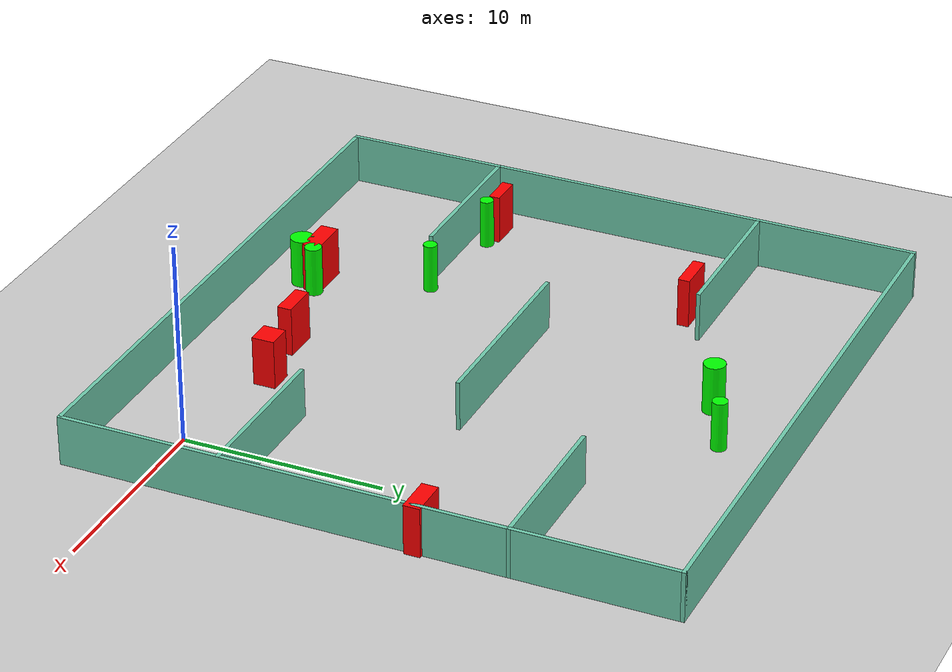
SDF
<sdf version="1.7">
 <world name="default">
  <light name="sun" type="directional">
   <pose>0 0 10 0 -0 0</pose>
   <diffuse>0.8 0.8 0.8 1</diffuse>
   <specular>0.2 0.2 0.2 1</specular>
   <attenuation>
    <range>1000</range>
    <constant>0.9</constant>
    <linear>0.01</linear>
    <quadratic>0.001</quadratic>
   </attenuation>
   <direction>-0.5 0.1 -0.9</direction>
   <spot><inner_angle>0</inner_angle><outer_angle>0</outer_angle><falloff>0</falloff></spot>
  </light>
  <model name="ground_plane">
   <static>1</static>
   <link name="link">
    <collision name="collision">
     <geometry><plane><normal>0 0 1</normal><size>100 100</size></plane></geometry>
     <surface>
      <contact><collide_bitmask>65535</collide_bitmask></contact>
      <friction><ode><mu>100</mu><mu2>50</mu2></ode></friction>
     </surface>
    </collision>
    <visual name="visual">
     <cast_shadows>0</cast_shadows>
     <geometry><plane><normal>0 0 1</normal><size>100 100</size></plane></geometry>
     <material>
      <script><uri>file://media/materials/scripts/gazebo.material</uri><name>Gazebo/Grey</name></script>
     </material>
    </visual>
   </link>
  </model>
  <gravity>0 0 -9.8</gravity>
  <magnetic_field>6e-06 2.3e-05 -4.2e-05</magnetic_field>
  <atmosphere type="adiabatic"/>
  <physics type="ode">
   <max_step_size>0.001</max_step_size>
   <real_time_factor>1</real_time_factor>
   <real_time_update_rate>1000</real_time_update_rate>
  </physics>
  <scene><ambient>0.4 0.4 0.4 1</ambient><background>0.7 0.7 0.7 1</background><shadows>1</shadows></scene>
  <spherical_coordinates>
   <surface_model>EARTH_WGS84</surface_model>
   <latitude_deg>0</latitude_deg>
   <longitude_deg>0</longitude_deg>
   <elevation>0</elevation>
   <heading_deg>0</heading_deg>
  </spherical_coordinates>
  <model name="my_base_walls">
   <link name="Wall_10">
    <collision name="Wall_10_Collision">
     <geometry><box><size>8.2 0.2 2.5</size></box></geometry>
     <pose>0 0 1.25 0 -0 0</pose>
    </collision>
    <visual name="Wall_10_Visual">
     <pose>0 0 1.25 0 -0 0</pose>
     <geometry><box><size>8.2 0.2 2.5</size></box></geometry>
     <material>
      <script><uri>file://media/materials/scripts/gazebo.material</uri><name>Gazebo/Grey</name></script>
      <ambient>0.435294 0.796078 0.67451 1</ambient>
     </material>
     <meta><layer>0</layer></meta>
    </visual>
    <pose>-11 -7 0 0 -0 0</pose>
   </link>
   <link name="Wall_12">
    <collision name="Wall_12_Collision">
     <geometry><box><size>8.2 0.2 2.5</size></box></geometry>
     <pose>0 0 1.25 0 -0 0</pose>
    </collision>
    <visual name="Wall_12_Visual">
     <pose>0 0 1.25 0 -0 0</pose>
     <geometry><box><size>8.2 0.2 2.5</size></box></geometry>
     <material>
      <script><uri>file://media/materials/scripts/gazebo.material</uri><name>Gazebo/Grey</name></script>
      <ambient>0.435294 0.796078 0.67451 1</ambient>
     </material>
     <meta><layer>0</layer></meta>
    </visual>
    <pose>-11 7 0 0 -0 0</pose>
   </link>
   <link name="Wall_14">
    <collision name="Wall_14_Collision">
     <geometry><box><size>8.2 0.2 2.5</size></box></geometry>
     <pose>0 0 1.25 0 -0 0</pose>
    </collision>
    <visual name="Wall_14_Visual">
     <pose>0 0 1.25 0 -0 0</pose>
     <geometry><box><size>8.2 0.2 2.5</size></box></geometry>
     <material>
      <script><uri>file://media/materials/scripts/gazebo.material</uri><name>Gazebo/Grey</name></script>
      <ambient>0.435294 0.796078 0.67451 1</ambient>
     </material>
     <meta><layer>0</layer></meta>
    </visual>
    <pose>11 7 0 0 -0 3.14159</pose>
   </link>
   <link name="Wall_16">
    <collision name="Wall_16_Collision">
     <geometry><box><size>10.2 0.2 2.5</size></box></geometry>
     <pose>0 0 1.25 0 -0 0</pose>
    </collision>
    <visual name="Wall_16_Visual">
     <pose>0 0 1.25 0 -0 0</pose>
     <geometry><box><size>10.2 0.2 2.5</size></box></geometry>
     <material>
      <script><uri>file://media/materials/scripts/gazebo.material</uri><name>Gazebo/Grey</name></script>
      <ambient>0.435294 0.796078 0.67451 1</ambient>
     </material>
     <meta><layer>0</layer></meta>
    </visual>
    <pose>0 0 0 0 -0 3.14159</pose>
   </link>
   <link name="Wall_2">
    <collision name="Wall_2_Collision">
     <geometry><box><size>30.2 0.2 2.5</size></box></geometry>
     <pose>0 0 1.25 0 -0 0</pose>
    </collision>
    <visual name="Wall_2_Visual">
     <pose>0 0 1.25 0 -0 0</pose>
     <geometry><box><size>30.2 0.2 2.5</size></box></geometry>
     <material>
      <script><uri>file://media/materials/scripts/gazebo.material</uri><name>Gazebo/Grey</name></script>
      <ambient>0.435294 0.796078 0.67451 1</ambient>
     </material>
     <meta><layer>0</layer></meta>
    </visual>
    <pose>0 -15 0 0 -0 3.14159</pose>
   </link>
   <link name="Wall_3">
    <collision name="Wall_3_Collision">
     <geometry><box><size>30.2 0.2 2.5</size></box></geometry>
     <pose>0 0 1.25 0 -0 0</pose>
    </collision>
    <visual name="Wall_3_Visual">
     <pose>0 0 1.25 0 -0 0</pose>
     <geometry><box><size>30.2 0.2 2.5</size></box></geometry>
     <material>
      <script><uri>file://media/materials/scripts/gazebo.material</uri><name>Gazebo/Grey</name></script>
      <ambient>0.435294 0.796078 0.67451 1</ambient>
     </material>
     <meta><layer>0</layer></meta>
    </visual>
    <pose>-15 0 0 0 -0 1.5708</pose>
   </link>
   <link name="Wall_4">
    <collision name="Wall_4_Collision">
     <geometry><box><size>30.2 0.2 2.5</size></box></geometry>
     <pose>0 0 1.25 0 -0 0</pose>
    </collision>
    <visual name="Wall_4_Visual">
     <pose>0 0 1.25 0 -0 0</pose>
     <geometry><box><size>30.2 0.2 2.5</size></box></geometry>
     <material>
      <script><uri>file://media/materials/scripts/gazebo.material</uri><name>Gazebo/Grey</name></script>
      <ambient>0.435294 0.796078 0.67451 1</ambient>
     </material>
     <meta><layer>0</layer></meta>
    </visual>
    <pose>0 15 0 0 -0 0</pose>
   </link>
   <link name="Wall_6">
    <collision name="Wall_6_Collision">
     <geometry><box><size>30.2 0.2 2.5</size></box></geometry>
     <pose>0 0 1.25 0 -0 0</pose>
    </collision>
    <visual name="Wall_6_Visual">
     <pose>0 0 1.25 0 -0 0</pose>
     <geometry><box><size>30.2 0.2 2.5</size></box></geometry>
     <material>
      <script><uri>file://media/materials/scripts/gazebo.material</uri><name>Gazebo/Grey</name></script>
      <ambient>0.435294 0.796078 0.67451 1</ambient>
     </material>
     <meta><layer>0</layer></meta>
    </visual>
    <pose>15 0 0 0 -0 1.5708</pose>
   </link>
   <link name="Wall_8">
    <collision name="Wall_8_Collision">
     <geometry><box><size>8.2 0.2 2.5</size></box></geometry>
     <pose>0 0 1.25 0 -0 0</pose>
    </collision>
    <visual name="Wall_8_Visual">
     <pose>0 0 1.25 0 -0 0</pose>
     <geometry><box><size>8.2 0.2 2.5</size></box></geometry>
     <material>
      <script><uri>file://media/materials/scripts/gazebo.material</uri><name>Gazebo/Grey</name></script>
      <ambient>0.435294 0.796078 0.67451 1</ambient>
     </material>
     <meta><layer>0</layer></meta>
    </visual>
    <pose>11 -7 0 0 -0 3.14159</pose>
   </link>
   <static>1</static>
   <pose>-11 11 0 0 -0 0</pose>
  </model>
  <model name="cylinder1">
   <static>1</static>
   <link name="link">
    <inertial>
     <mass>1</mass>
     <inertia><ixx>0.5</ixx><ixy>0</ixy><ixz>0</ixz><iyy>0.5</iyy><iyz>0</iyz><izz>1</izz></inertia>
    </inertial>
    <collision name="collision">
     <geometry><cylinder><radius>0.4229013260755582</radius><length>2.5</length></cylinder></geometry>
    </collision>
    <visual name="visual">
     <geometry><cylinder><radius>0.4229013260755582</radius><length>2.5</length></cylinder></geometry>
     <material>
      <ambient>0 1 0 1</ambient>
      <diffuse>0 1 0 1</diffuse>
      <specular>0.1 0.1 0.1 1</specular>
      <emissive>0 0 0 0</emissive>
     </material>
    </visual>
   </link>
   <pose>-14.59210010870222 -0.7446711884708916 1.25 0 0 0</pose>
  </model>
  <model name="cylinder2">
   <static>1</static>
   <link name="link">
    <inertial>
     <mass>1</mass>
     <inertia><ixx>0.5</ixx><ixy>0</ixy><ixz>0</ixz><iyy>0.5</iyy><iyz>0</iyz><izz>1</izz></inertia>
    </inertial>
    <collision name="collision">
     <geometry><cylinder><radius>0.34650780981091756</radius><length>2.5</length></cylinder></geometry>
    </collision>
    <visual name="visual">
     <geometry><cylinder><radius>0.34650780981091756</radius><length>2.5</length></cylinder></geometry>
     <material>
      <ambient>0 1 0 1</ambient>
      <diffuse>0 1 0 1</diffuse>
      <specular>0.1 0.1 0.1 1</specular>
      <emissive>0 0 0 0</emissive>
     </material>
    </visual>
   </link>
   <pose>-17.160923159777568 4.323913831206937 1.25 0 0 0</pose>
  </model>
  <model name="cylinder3">
   <static>1</static>
   <link name="link">
    <inertial>
     <mass>1</mass>
     <inertia><ixx>0.5</ixx><ixy>0</ixy><ixz>0</ixz><iyy>0.5</iyy><iyz>0</iyz><izz>1</izz></inertia>
    </inertial>
    <collision name="collision">
     <geometry><cylinder><radius>0.5378599792285661</radius><length>2.5</length></cylinder></geometry>
    </collision>
    <visual name="visual">
     <geometry><cylinder><radius>0.5378599792285661</radius><length>2.5</length></cylinder></geometry>
     <material>
      <ambient>0 1 0 1</ambient>
      <diffuse>0 1 0 1</diffuse>
      <specular>0.1 0.1 0.1 1</specular>
      <emissive>0 0 0 0</emissive>
     </material>
    </visual>
   </link>
   <pose>-12.306343810512965 21.01618471657655 1.25 0 0 0</pose>
  </model>
  <model name="cylinder4">
   <static>1</static>
   <link name="link">
    <inertial>
     <mass>1</mass>
     <inertia><ixx>0.5</ixx><ixy>0</ixy><ixz>0</ixz><iyy>0.5</iyy><iyz>0</iyz><izz>1</izz></inertia>
    </inertial>
    <collision name="collision">
     <geometry><cylinder><radius>0.34871553513931325</radius><length>2.5</length></cylinder></geometry>
    </collision>
    <visual name="visual">
     <geometry><cylinder><radius>0.34871553513931325</radius><length>2.5</length></cylinder></geometry>
     <material>
      <ambient>0 1 0 1</ambient>
      <diffuse>0 1 0 1</diffuse>
      <specular>0.1 0.1 0.1 1</specular>
      <emissive>0 0 0 0</emissive>
     </material>
    </visual>
   </link>
   <pose>-22.42714412785009 4.947976988969643 1.25 0 0 0</pose>
  </model>
  <model name="cylinder5">
   <static>1</static>
   <link name="link">
    <inertial>
     <mass>1</mass>
     <inertia><ixx>0.5</ixx><ixy>0</ixy><ixz>0</ixz><iyy>0.5</iyy><iyz>0</iyz><izz>1</izz></inertia>
    </inertial>
    <collision name="collision">
     <geometry><cylinder><radius>0.5910782525062215</radius><length>2.5</length></cylinder></geometry>
    </collision>
    <visual name="visual">
     <geometry><cylinder><radius>0.5910782525062215</radius><length>2.5</length></cylinder></geometry>
     <material>
      <ambient>0 1 0 1</ambient>
      <diffuse>0 1 0 1</diffuse>
      <specular>0.1 0.1 0.1 1</specular>
      <emissive>0 0 0 0</emissive>
     </material>
    </visual>
   </link>
   <pose>-15.261019636923768 -1.6792087809678784 1.25 0 0 0</pose>
  </model>
  <model name="cylinder6">
   <static>1</static>
   <link name="link">
    <inertial>
     <mass>1</mass>
     <inertia><ixx>0.5</ixx><ixy>0</ixy><ixz>0</ixz><iyy>0.5</iyy><iyz>0</iyz><izz>1</izz></inertia>
    </inertial>
    <collision name="collision">
     <geometry><cylinder><radius>0.3739086752548208</radius><length>2.5</length></cylinder></geometry>
    </collision>
    <visual name="visual">
     <geometry><cylinder><radius>0.3739086752548208</radius><length>2.5</length></cylinder></geometry>
     <material>
      <ambient>0 1 0 1</ambient>
      <diffuse>0 1 0 1</diffuse>
      <specular>0.1 0.1 0.1 1</specular>
      <emissive>0 0 0 0</emissive>
     </material>
    </visual>
   </link>
   <pose>-9.327449127543186 22.430154699258388 1.25 0 0 0</pose>
  </model>
  <model name="box1">
   <static>1</static>
   <link name="link">
    <inertial>
     <mass>1</mass>
     <inertia><ixx>0.083</ixx><ixy>0</ixy><ixz>0</ixz><iyy>0.083</iyy><iyz>0</iyz><izz>0.083</izz></inertia>
    </inertial>
    <collision name="collision">
     <geometry><box><size>1.8405494655019354 0.7095703754344163 2.5</size></box></geometry>
    </collision>
    <visual name="visual">
     <geometry><box><size>1.8405494655019354 0.7095703754344163 2.5</size></box></geometry>
     <material>
      <ambient>1 0 0 1</ambient>
      <diffuse>1 0 0 1</diffuse>
      <specular>0.1 0.1 0.1 1</specular>
      <emissive>0 0 0 0</emissive>
     </material>
    </visual>
    <sensor name="my_contact" type="contact">
     <contact><collision>box_collision</collision><topic>__default_topic__</topic></contact>
    </sensor>
   </link>
   <pose>-9.62227446894789 0.7169510408474471 1.25 0 0 0</pose>
  </model>
  <model name="box2">
   <static>1</static>
   <link name="link">
    <inertial>
     <mass>1</mass>
     <inertia><ixx>0.083</ixx><ixy>0</ixy><ixz>0</ixz><iyy>0.083</iyy><iyz>0</iyz><izz>0.083</izz></inertia>
    </inertial>
    <collision name="collision">
     <geometry><box><size>1.6346165046946652 0.550273691609056 2.5</size></box></geometry>
    </collision>
    <visual name="visual">
     <geometry><box><size>1.6346165046946652 0.550273691609056 2.5</size></box></geometry>
     <material>
      <ambient>1 0 0 1</ambient>
      <diffuse>1 0 0 1</diffuse>
      <specular>0.1 0.1 0.1 1</specular>
      <emissive>0 0 0 0</emissive>
     </material>
    </visual>
    <sensor name="my_contact" type="contact">
     <contact><collision>box_collision</collision><topic>__default_topic__</topic></contact>
    </sensor>
   </link>
   <pose>-23.65333887935036 5.170175671351444 1.25 0 0 0</pose>
  </model>
  <model name="box3">
   <static>1</static>
   <link name="link">
    <inertial>
     <mass>1</mass>
     <inertia><ixx>0.083</ixx><ixy>0</ixy><ixz>0</ixz><iyy>0.083</iyy><iyz>0</iyz><izz>0.083</izz></inertia>
    </inertial>
    <collision name="collision">
     <geometry><box><size>1.2371720711012957 1.126056961227647 2.5</size></box></geometry>
    </collision>
    <visual name="visual">
     <geometry><box><size>1.2371720711012957 1.126056961227647 2.5</size></box></geometry>
     <material>
      <ambient>1 0 0 1</ambient>
      <diffuse>1 0 0 1</diffuse>
      <specular>0.1 0.1 0.1 1</specular>
      <emissive>0 0 0 0</emissive>
     </material>
    </visual>
    <sensor name="my_contact" type="contact">
     <contact><collision>box_collision</collision><topic>__default_topic__</topic></contact>
    </sensor>
   </link>
   <pose>-6.287469320962222 1.1515604473554673 1.25 0 0 0</pose>
  </model>
  <model name="box4">
   <static>1</static>
   <link name="link">
    <inertial>
     <mass>1</mass>
     <inertia><ixx>0.083</ixx><ixy>0</ixy><ixz>0</ixz><iyy>0.083</iyy><iyz>0</iyz><izz>0.083</izz></inertia>
    </inertial>
    <collision name="collision">
     <geometry><box><size>1.999316947601255 0.589478784548904 2.5</size></box></geometry>
    </collision>
    <visual name="visual">
     <geometry><box><size>1.999316947601255 0.589478784548904 2.5</size></box></geometry>
     <material>
      <ambient>1 0 0 1</ambient>
      <diffuse>1 0 0 1</diffuse>
      <specular>0.1 0.1 0.1 1</specular>
      <emissive>0 0 0 0</emissive>
     </material>
    </visual>
    <sensor name="my_contact" type="contact">
     <contact><collision>box_collision</collision><topic>__default_topic__</topic></contact>
    </sensor>
   </link>
   <pose>-19.88088949966573 16.874127839093457 1.25 0 0 0</pose>
  </model>
  <model name="box5">
   <static>1</static>
   <link name="link">
    <inertial>
     <mass>1</mass>
     <inertia><ixx>0.083</ixx><ixy>0</ixy><ixz>0</ixz><iyy>0.083</iyy><iyz>0</iyz><izz>0.083</izz></inertia>
    </inertial>
    <collision name="collision">
     <geometry><box><size>2.0951013937254688 0.8990793521037754 2.5</size></box></geometry>
    </collision>
    <visual name="visual">
     <geometry><box><size>2.0951013937254688 0.8990793521037754 2.5</size></box></geometry>
     <material>
      <ambient>1 0 0 1</ambient>
      <diffuse>1 0 0 1</diffuse>
      <specular>0.1 0.1 0.1 1</specular>
      <emissive>0 0 0 0</emissive>
     </material>
    </visual>
    <sensor name="my_contact" type="contact">
     <contact><collision>box_collision</collision><topic>__default_topic__</topic></contact>
    </sensor>
   </link>
   <pose>-15.65168824958283 -0.8991925085241013 1.25 0 0 0</pose>
  </model>
  <model name="box6">
   <static>1</static>
   <link name="link">
    <inertial>
     <mass>1</mass>
     <inertia><ixx>0.083</ixx><ixy>0</ixy><ixz>0</ixz><iyy>0.083</iyy><iyz>0</iyz><izz>0.083</izz></inertia>
    </inertial>
    <collision name="collision">
     <geometry><box><size>1.9219542085865013 0.8123039808532275 2.5</size></box></geometry>
    </collision>
    <visual name="visual">
     <geometry><box><size>1.9219542085865013 0.8123039808532275 2.5</size></box></geometry>
     <material>
      <ambient>1 0 0 1</ambient>
      <diffuse>1 0 0 1</diffuse>
      <specular>0.1 0.1 0.1 1</specular>
      <emissive>0 0 0 0</emissive>
     </material>
    </visual>
    <sensor name="my_contact" type="contact">
     <contact><collision>box_collision</collision><topic>__default_topic__</topic></contact>
    </sensor>
   </link>
   <pose>3.302643980357523 13.510342890223889 1.25 0 0 0</pose>
  </model>
 </world>
</sdf>
